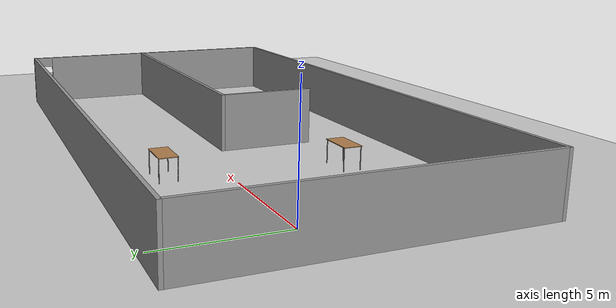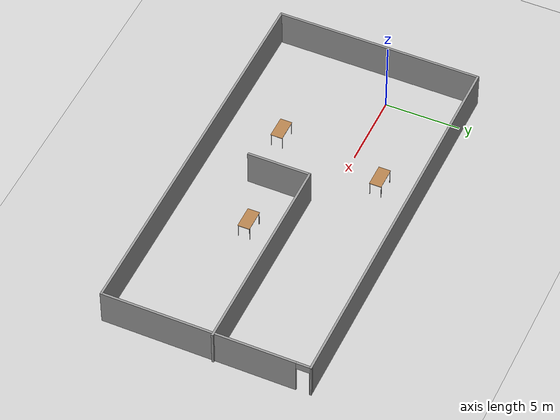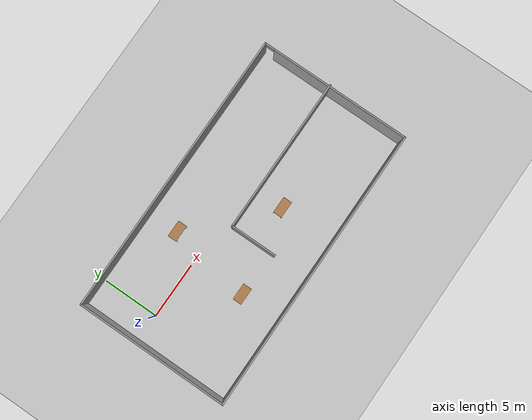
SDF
<sdf version="1.7">
 <world name="default">
  <light name="sun" type="directional">
   <pose>0 0 10 0 -0 0</pose>
   <diffuse>0.8 0.8 0.8 1</diffuse>
   <specular>0.2 0.2 0.2 1</specular>
   <attenuation>
    <range>1000</range>
    <constant>0.9</constant>
    <linear>0.01</linear>
    <quadratic>0.001</quadratic>
   </attenuation>
   <direction>-0.5 0.1 -0.9</direction>
   <spot><inner_angle>0</inner_angle><outer_angle>0</outer_angle><falloff>0</falloff></spot>
  </light>
  <model name="ground_plane">
   <static>1</static>
   <link name="link">
    <collision name="collision">
     <geometry><plane><normal>0 0 1</normal><size>100 100</size></plane></geometry>
     <surface><friction><ode><mu>100</mu><mu2>50</mu2></ode></friction></surface>
    </collision>
    <visual name="visual">
     <cast_shadows>0</cast_shadows>
     <geometry><plane><normal>0 0 1</normal><size>100 100</size></plane></geometry>
     <material>
      <script><uri>file://media/materials/scripts/gazebo.material</uri><name>Gazebo/Grey</name></script>
     </material>
    </visual>
   </link>
  </model>
  <gravity>0 0 -9.8</gravity>
  <magnetic_field>6e-06 2.3e-05 -4.2e-05</magnetic_field>
  <atmosphere type="adiabatic"/>
  <physics type="ode">
   <max_step_size>0.001</max_step_size>
   <real_time_factor>1</real_time_factor>
   <real_time_update_rate>1000</real_time_update_rate>
  </physics>
  <scene><ambient>0.4 0.4 0.4 1</ambient><background>0.7 0.7 0.7 1</background><shadows>1</shadows></scene>
  <spherical_coordinates>
   <surface_model>EARTH_WGS84</surface_model>
   <latitude_deg>0</latitude_deg>
   <longitude_deg>0</longitude_deg>
   <elevation>0</elevation>
   <heading_deg>0</heading_deg>
  </spherical_coordinates>
  <model name="Untitled">
   <pose>10.4521 -1.60752 0 0 -0 0</pose>
   <link name="Wall_2">
    <collision name="Wall_2_Collision">
     <geometry><box><size>25.75 0.15 2.5</size></box></geometry>
     <pose>0 0 1.25 0 -0 0</pose>
    </collision>
    <visual name="Wall_2_Visual">
     <pose>0 0 1.25 0 -0 0</pose>
     <geometry><box><size>25.75 0.15 2.5</size></box></geometry>
     <material>
      <script><uri>file://media/materials/scripts/gazebo.material</uri><name>Gazebo/Grey</name></script>
      <ambient>1 1 1 1</ambient>
     </material>
     <meta><layer>0</layer></meta>
    </visual>
    <pose>-0.061032 6.8 0 0 -0 3.14159</pose>
   </link>
   <link name="Wall_3">
    <collision name="Wall_3_Collision">
     <geometry><box><size>13.75 0.15 2.5</size></box></geometry>
     <pose>0 0 1.25 0 -0 0</pose>
    </collision>
    <visual name="Wall_3_Visual">
     <pose>0 0 1.25 0 -0 0</pose>
     <geometry><box><size>13.75 0.15 2.5</size></box></geometry>
     <material>
      <script><uri>file://media/materials/scripts/gazebo.material</uri><name>Gazebo/Grey</name></script>
      <ambient>1 1 1 1</ambient>
     </material>
     <meta><layer>0</layer></meta>
    </visual>
    <pose>-12.861 0 0 0 -0 -1.5708</pose>
   </link>
   <link name="Wall_4">
    <collision name="Wall_4_Collision">
     <geometry><box><size>25.75 0.15 2.5</size></box></geometry>
     <pose>0 0 1.25 0 -0 0</pose>
    </collision>
    <visual name="Wall_4_Visual">
     <pose>0 0 1.25 0 -0 0</pose>
     <geometry><box><size>25.75 0.15 2.5</size></box></geometry>
     <material>
      <script><uri>file://media/materials/scripts/gazebo.material</uri><name>Gazebo/Grey</name></script>
      <ambient>1 1 1 1</ambient>
     </material>
     <meta><layer>0</layer></meta>
    </visual>
    <pose>-0.061032 -6.8 0 0 -0 0</pose>
   </link>
   <link name="Wall_5">
    <pose>12.739 0 0 0 -0 1.5708</pose>
    <visual name="Wall_5_Visual_0">
     <pose>-0.499776 0 1.25 0 -0 0</pose>
     <geometry><box><size>12.7504 0.15 2.5</size></box></geometry>
     <material>
      <script><uri>file://media/materials/scripts/gazebo.material</uri><name>Gazebo/Grey</name></script>
      <ambient>1 1 1 1</ambient>
     </material>
     <meta><layer>0</layer></meta>
    </visual>
    <collision name="Wall_5_Collision_0">
     <geometry><box><size>12.7504 0.15 2.5</size></box></geometry>
     <pose>-0.499776 0 1.25 0 -0 0</pose>
    </collision>
    <visual name="Wall_5_Visual_1">
     <pose>6.82522 0 1.25 0 -0 0</pose>
     <geometry><box><size>0.099552 0.15 2.5</size></box></geometry>
     <material>
      <script><uri>file://media/materials/scripts/gazebo.material</uri><name>Gazebo/Grey</name></script>
      <ambient>1 1 1 1</ambient>
     </material>
     <meta><layer>0</layer></meta>
    </visual>
    <collision name="Wall_5_Collision_1">
     <geometry><box><size>0.099552 0.15 2.5</size></box></geometry>
     <pose>6.82522 0 1.25 0 -0 0</pose>
    </collision>
    <visual name="Wall_5_Visual_2">
     <pose>6.32545 0 2.25 0 -0 0</pose>
     <geometry><box><size>0.9 0.15 0.5</size></box></geometry>
     <material>
      <script><uri>file://media/materials/scripts/gazebo.material</uri><name>Gazebo/Grey</name></script>
      <ambient>1 1 1 1</ambient>
     </material>
     <meta><layer>0</layer></meta>
    </visual>
    <collision name="Wall_5_Collision_2">
     <geometry><box><size>0.9 0.15 0.5</size></box></geometry>
     <pose>6.32545 0 2.25 0 -0 0</pose>
    </collision>
   </link>
   <link name="Wall_7">
    <collision name="Wall_7_Collision">
     <geometry><box><size>14 0.15 2.5</size></box></geometry>
     <pose>0 0 1.25 0 -0 0</pose>
    </collision>
    <visual name="Wall_7_Visual">
     <pose>0 0 1.25 0 -0 0</pose>
     <geometry><box><size>14 0.15 2.5</size></box></geometry>
     <material>
      <script><uri>file://media/materials/scripts/gazebo.material</uri><name>Gazebo/Grey</name></script>
      <ambient>1 1 1 1</ambient>
     </material>
     <meta><layer>0</layer></meta>
    </visual>
    <pose>5.93603 0.541828 0 0 -0 3.14159</pose>
   </link>
   <link name="Wall_8">
    <collision name="Wall_8_Collision">
     <geometry><box><size>4.25 0.15 2.5</size></box></geometry>
     <pose>0 0 1.25 0 -0 0</pose>
    </collision>
    <visual name="Wall_8_Visual">
     <pose>0 0 1.25 0 -0 0</pose>
     <geometry><box><size>4.25 0.15 2.5</size></box></geometry>
     <material>
      <script><uri>file://media/materials/scripts/gazebo.material</uri><name>Gazebo/Grey</name></script>
      <ambient>1 1 1 1</ambient>
     </material>
     <meta><layer>0</layer></meta>
    </visual>
    <pose>-0.988967 -1.50817 0 0 -0 -1.5708</pose>
   </link>
   <static>1</static>
  </model>
  <model name="table">
   <static>1</static>
   <link name="link">
    <collision name="surface">
     <pose>0 0 1 0 -0 0</pose>
     <geometry><box><size>1.5 0.8 0.03</size></box></geometry>
     <surface><friction><ode><mu>0.6</mu><mu2>0.6</mu2></ode></friction></surface>
    </collision>
    <visual name="visual1">
     <pose>0 0 1 0 -0 0</pose>
     <geometry><box><size>1.5 0.8 0.03</size></box></geometry>
     <material>
      <script><uri>file://media/materials/scripts/gazebo.material</uri><name>Gazebo/Wood</name></script>
     </material>
    </visual>
    <collision name="front_left_leg">
     <pose>0.68 0.38 0.5 0 -0 0</pose>
     <geometry><cylinder><radius>0.02</radius><length>1</length></cylinder></geometry>
    </collision>
    <visual name="front_left_leg">
     <pose>0.68 0.38 0.5 0 -0 0</pose>
     <geometry><cylinder><radius>0.02</radius><length>1</length></cylinder></geometry>
     <material>
      <script><uri>file://media/materials/scripts/gazebo.material</uri><name>Gazebo/Grey</name></script>
     </material>
    </visual>
    <collision name="front_right_leg">
     <pose>0.68 -0.38 0.5 0 -0 0</pose>
     <geometry><cylinder><radius>0.02</radius><length>1</length></cylinder></geometry>
    </collision>
    <visual name="front_right_leg">
     <pose>0.68 -0.38 0.5 0 -0 0</pose>
     <geometry><cylinder><radius>0.02</radius><length>1</length></cylinder></geometry>
     <material>
      <script><uri>file://media/materials/scripts/gazebo.material</uri><name>Gazebo/Grey</name></script>
     </material>
    </visual>
    <collision name="back_right_leg">
     <pose>-0.68 -0.38 0.5 0 -0 0</pose>
     <geometry><cylinder><radius>0.02</radius><length>1</length></cylinder></geometry>
    </collision>
    <visual name="back_right_leg">
     <pose>-0.68 -0.38 0.5 0 -0 0</pose>
     <geometry><cylinder><radius>0.02</radius><length>1</length></cylinder></geometry>
     <material>
      <script><uri>file://media/materials/scripts/gazebo.material</uri><name>Gazebo/Grey</name></script>
     </material>
    </visual>
    <collision name="back_left_leg">
     <pose>-0.68 0.38 0.5 0 -0 0</pose>
     <geometry><cylinder><radius>0.02</radius><length>1</length></cylinder></geometry>
    </collision>
    <visual name="back_left_leg">
     <pose>-0.68 0.38 0.5 0 -0 0</pose>
     <geometry><cylinder><radius>0.02</radius><length>1</length></cylinder></geometry>
     <material>
      <script><uri>file://media/materials/scripts/gazebo.material</uri><name>Gazebo/Grey</name></script>
     </material>
    </visual>
   </link>
   <pose>13.1354 -3.48985 0 0 -0 0</pose>
  </model>
  <model name="table_0">
   <static>1</static>
   <link name="link">
    <collision name="surface">
     <pose>0 0 1 0 -0 0</pose>
     <geometry><box><size>1.5 0.8 0.03</size></box></geometry>
     <surface><friction><ode><mu>0.6</mu><mu2>0.6</mu2></ode></friction></surface>
    </collision>
    <visual name="visual1">
     <pose>0 0 1 0 -0 0</pose>
     <geometry><box><size>1.5 0.8 0.03</size></box></geometry>
     <material>
      <script><uri>file://media/materials/scripts/gazebo.material</uri><name>Gazebo/Wood</name></script>
     </material>
    </visual>
    <collision name="front_left_leg">
     <pose>0.68 0.38 0.5 0 -0 0</pose>
     <geometry><cylinder><radius>0.02</radius><length>1</length></cylinder></geometry>
    </collision>
    <visual name="front_left_leg">
     <pose>0.68 0.38 0.5 0 -0 0</pose>
     <geometry><cylinder><radius>0.02</radius><length>1</length></cylinder></geometry>
     <material>
      <script><uri>file://media/materials/scripts/gazebo.material</uri><name>Gazebo/Grey</name></script>
     </material>
    </visual>
    <collision name="front_right_leg">
     <pose>0.68 -0.38 0.5 0 -0 0</pose>
     <geometry><cylinder><radius>0.02</radius><length>1</length></cylinder></geometry>
    </collision>
    <visual name="front_right_leg">
     <pose>0.68 -0.38 0.5 0 -0 0</pose>
     <geometry><cylinder><radius>0.02</radius><length>1</length></cylinder></geometry>
     <material>
      <script><uri>file://media/materials/scripts/gazebo.material</uri><name>Gazebo/Grey</name></script>
     </material>
    </visual>
    <collision name="back_right_leg">
     <pose>-0.68 -0.38 0.5 0 -0 0</pose>
     <geometry><cylinder><radius>0.02</radius><length>1</length></cylinder></geometry>
    </collision>
    <visual name="back_right_leg">
     <pose>-0.68 -0.38 0.5 0 -0 0</pose>
     <geometry><cylinder><radius>0.02</radius><length>1</length></cylinder></geometry>
     <material>
      <script><uri>file://media/materials/scripts/gazebo.material</uri><name>Gazebo/Grey</name></script>
     </material>
    </visual>
    <collision name="back_left_leg">
     <pose>-0.68 0.38 0.5 0 -0 0</pose>
     <geometry><cylinder><radius>0.02</radius><length>1</length></cylinder></geometry>
    </collision>
    <visual name="back_left_leg">
     <pose>-0.68 0.38 0.5 0 -0 0</pose>
     <geometry><cylinder><radius>0.02</radius><length>1</length></cylinder></geometry>
     <material>
      <script><uri>file://media/materials/scripts/gazebo.material</uri><name>Gazebo/Grey</name></script>
     </material>
    </visual>
   </link>
   <pose>5.47731 -4.7978 0 0 -0 0</pose>
  </model>
  <model name="table_1">
   <static>1</static>
   <link name="link">
    <collision name="surface">
     <pose>0 0 1 0 -0 0</pose>
     <geometry><box><size>1.5 0.8 0.03</size></box></geometry>
     <surface><friction><ode><mu>0.6</mu><mu2>0.6</mu2></ode></friction></surface>
    </collision>
    <visual name="visual1">
     <pose>0 0 1 0 -0 0</pose>
     <geometry><box><size>1.5 0.8 0.03</size></box></geometry>
     <material>
      <script><uri>file://media/materials/scripts/gazebo.material</uri><name>Gazebo/Wood</name></script>
     </material>
    </visual>
    <collision name="front_left_leg">
     <pose>0.68 0.38 0.5 0 -0 0</pose>
     <geometry><cylinder><radius>0.02</radius><length>1</length></cylinder></geometry>
    </collision>
    <visual name="front_left_leg">
     <pose>0.68 0.38 0.5 0 -0 0</pose>
     <geometry><cylinder><radius>0.02</radius><length>1</length></cylinder></geometry>
     <material>
      <script><uri>file://media/materials/scripts/gazebo.material</uri><name>Gazebo/Grey</name></script>
     </material>
    </visual>
    <collision name="front_right_leg">
     <pose>0.68 -0.38 0.5 0 -0 0</pose>
     <geometry><cylinder><radius>0.02</radius><length>1</length></cylinder></geometry>
    </collision>
    <visual name="front_right_leg">
     <pose>0.68 -0.38 0.5 0 -0 0</pose>
     <geometry><cylinder><radius>0.02</radius><length>1</length></cylinder></geometry>
     <material>
      <script><uri>file://media/materials/scripts/gazebo.material</uri><name>Gazebo/Grey</name></script>
     </material>
    </visual>
    <collision name="back_right_leg">
     <pose>-0.68 -0.38 0.5 0 -0 0</pose>
     <geometry><cylinder><radius>0.02</radius><length>1</length></cylinder></geometry>
    </collision>
    <visual name="back_right_leg">
     <pose>-0.68 -0.38 0.5 0 -0 0</pose>
     <geometry><cylinder><radius>0.02</radius><length>1</length></cylinder></geometry>
     <material>
      <script><uri>file://media/materials/scripts/gazebo.material</uri><name>Gazebo/Grey</name></script>
     </material>
    </visual>
    <collision name="back_left_leg">
     <pose>-0.68 0.38 0.5 0 -0 0</pose>
     <geometry><cylinder><radius>0.02</radius><length>1</length></cylinder></geometry>
    </collision>
    <visual name="back_left_leg">
     <pose>-0.68 0.38 0.5 0 -0 0</pose>
     <geometry><cylinder><radius>0.02</radius><length>1</length></cylinder></geometry>
     <material>
      <script><uri>file://media/materials/scripts/gazebo.material</uri><name>Gazebo/Grey</name></script>
     </material>
    </visual>
   </link>
   <pose>6.66132 2.44948 0 0 -0 0</pose>
  </model>
 </world>
</sdf>
